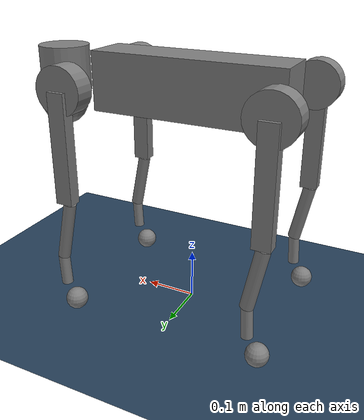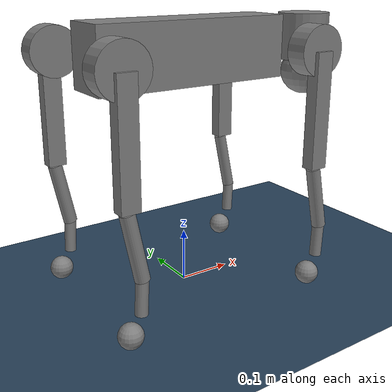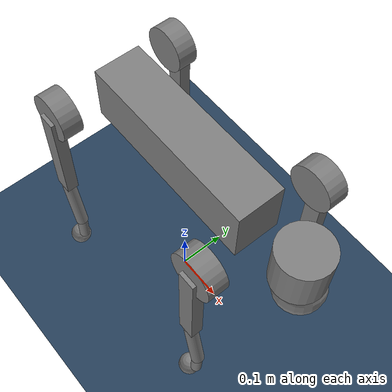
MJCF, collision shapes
<mujoco model="go2">
  <compiler angle="radian" meshdir="meshes" autolimits="true"/>

  <option cone="elliptic" impratio="100" integrator="implicitfast" timestep="0.0005"/>

<!-- All motor control limits are handeled in the joint actuatorfrcrange field. -->
  <default>
    <default class="go2">
      <geom friction="0.6" margin="0.001" condim="1"/>
      <joint axis="0 1 0" damping="2" armature="0.01" frictionloss="0.4"/>
      <motor ctrllimited="false"/>

      <!-- Hip joints -->
      <default class="hip">
        <joint axis="1 0 0" range="-1.0472 1.0472" actuatorfrcrange="-23.7 23.7"/>

        <!-- Position Control -->
        <default class="hip_pos">
          <position kp="60" ctrllimited="false"/>
        </default>

        <!-- Velocity Control -->
        <default class="hip_vel">
          <velocity kv="3" ctrllimited="false"/>
        </default>
      </default>

      <!-- Thigh joints -->
      <default class="thigh">
        <default class="front_thigh">
          <joint range="-1.5708 3.4907" actuatorfrcrange="-23.7 23.7"/>
        </default>
        <default class="back_thigh">
          <joint range="-0.5236 4.5379" actuatorfrcrange="-23.7 23.7"/>
        </default>

        <!-- Position Control -->
        <default class="thigh_pos">
          <position kp="60" ctrllimited="false"/>
        </default>

        <!-- Velocity Control -->
        <default class="thigh_vel">
          <velocity kv="3" ctrllimited="false"/>
        </default>
      </default>

      <!-- Calf joints -->
      <default class="calf">
        <joint range="-2.7227 -0.83776" actuatorfrcrange="-45.43 45.43"/>

        <!-- Position Control -->
        <default class="calf_pos">
         <position kp="60" ctrllimited="false"/>
        </default>

        <!-- Velocity Control -->
        <default class="calf_vel">
          <velocity kv="3" ctrllimited="false"/>
        </default>
      </default>

      <default class="visual">
        <geom type="mesh" contype="0" conaffinity="0" group="2"/>
      </default>

      <default class="collision">
        <geom group="3"/>
        <default class="foot">
          <geom size="0.022" pos="-0.002 0 -0.213" priority="1" solimp="0.015 1 0.022" condim="6"
            friction="0.8 0.02 0.01"/>
        </default>
      </default>
    </default>
  </default>

  <asset>
    <material name="metal" rgba=".9 .95 .95 1"/>
    <material name="black" rgba="0 0 0 1"/>
    <material name="white" rgba="1 1 1 1"/>
    <material name="gray" rgba="0.671705 0.692426 0.774270 1"/>

    <mesh name="trunk" file="trunk.stl"/>
    <mesh name="calf" file="calf.stl"/>
    <mesh name="foot" file="foot.stl"/>
    <mesh name="hip" file="hip.stl"/>
    <mesh name="thigh" file="thigh.stl"/>
    <mesh name="thigh_mirror" file="thigh_mirror.stl"/>
    <mesh name="calf_mirror" file="calf_mirror.stl"/>
  </asset>

  <worldbody>
    <body name="torso" pos="0 0 0.445" childclass="go2">
      <inertial pos="0.021112 0 -0.005366" quat="-0.000543471 0.713435 -0.00173769 0.700719" mass="6.921"
        diaginertia="0.02448 0.098077 0.107"/>
        <!-- diaginertia changed to match urdf throghout xml -->

      <geom mesh="trunk" class="visual"/>
      <geom size="0.1881 0.04675 0.057" type="box" class="collision"/>
      <geom size="0.05 0.045" pos="0.285 0 0.01" type="cylinder" class="collision"/>
      <geom size="0.047" pos="0.293 0 -0.06" class="collision"/>

      <site name="imu" pos="-0.02557 0 0.04232"/>
      <site name="torso_mocap_site" pos="0 0 0" euler="0 0 0" size="0.01"/>

      <body name="FL_hip" pos="0.1934 0.0465 0">
        <inertial pos="-0.0054 0.00194 -0.000105" quat="0.497014 0.499245 0.505462 0.498237" mass="0.678"
          diaginertia="0.00048 0.000884 0.000596"/>
        <joint name="FL_hip_joint" class="hip"/>
        <geom mesh="hip" class="visual"/>
        <geom size="0.046 0.02" pos="0 0.08 0" quat="1 1 0 0" type="cylinder" class="collision"/>

        <body name="FL_hip_rotor" pos="0.11215 0.04675 0">
          <inertial pos="0 0 0" euler="0 0 0" mass="0.089"
                diaginertia="0.000111842 0.000059647 0.000059647"/>
        </body>

        <body name="FL_thigh" pos="0 0.0955 0">
          <inertial pos="-0.00374 -0.0223 -0.0327" quat="0.829533 0.0847635 -0.0200632 0.551623" mass="1.152"
            diaginertia="0.00594973 0.00584149 0.000878787"/>
          <joint name="FL_thigh_joint" class="front_thigh"/>
          <geom mesh="thigh" class="visual"/>
          <geom size="0.1065 0.01225 0.017" pos="0 0 -0.1065" quat="0.707107 0 0.707107 0" type="box" class="collision"/>
          <body name="FL_calf" pos="0 0 -0.213">
            <inertial pos="0.00629595 -0.000622121 -0.141417" quat="0.710672 0.00154099 -0.00450087 0.703508"
              mass="0.241352" diaginertia="0.0014901 0.00146356 5.31397e-05"/>
            <joint name="FL_calf_joint" class="calf"/>
            <geom mesh="calf" class="visual"/>
            <geom size="0.012 0.06" pos="0.008 0 -0.06" quat="0.994493 0 -0.104807 0" type="cylinder" class="collision"/>
            <geom size="0.011 0.0325" pos="0.02 0 -0.148" quat="0.999688 0 0.0249974 0" type="cylinder" class="collision"/>
            <geom pos="0 0 -0.213" mesh="foot" class="visual" material="black"/>
            <geom name="FL" class="foot"/>
            <site name="FL_foot_site" pos="0 0 -0.213" size="0.01"/>
          </body>
        </body>
      </body>

      <body name="FR_hip" pos="0.1934 -0.0465 0">
        <inertial pos="-0.0054 -0.00194 -0.000105" quat="0.498237 0.505462 0.499245 0.497014" mass="0.678"
          diaginertia="0.00088403 0.000596003 0.000479967"/>
        <joint name="FR_hip_joint" class="hip"/>
        <geom mesh="hip" class="visual" quat="0 1 0 0"/>
        <geom size="0.046 0.02" pos="0 -0.08 0" quat="0.707107 0.707107 0 0" type="cylinder" class="collision"/>

        <body name="FR_hip_rotor" pos="0.11215 -0.04675 0">
          <inertial pos="0 0 0" euler="0 0 0" mass="0.089"
                diaginertia="0.000111842 0.000059647 0.000059647"/>
        </body>

        <body name="FR_thigh" pos="0 -0.0955 0">
          <inertial pos="-0.00374 0.0223 -0.0327" quat="0.551623 -0.0200632 0.0847635 0.829533" mass="1.152"
            diaginertia="0.00594973 0.00584149 0.000878787"/>
          <joint name="FR_thigh_joint" class="front_thigh"/>
          <geom mesh="thigh_mirror" class="visual"/>
          <geom size="0.1065 0.01225 0.017" pos="0 0 -0.1065" quat="0.707107 0 0.707107 0" type="box" class="collision"/>
          <body name="FR_calf" pos="0 0 -0.213">
            <inertial pos="0.00629595 0.000622121 -0.141417" quat="0.703508 -0.00450087 0.00154099 0.710672"
              mass="0.241352" diaginertia="0.0014901 0.00146356 5.31397e-05"/>
            <joint name="FR_calf_joint" class="calf"/>
            <geom mesh="calf_mirror" class="visual"/>
            <geom size="0.013 0.06" pos="0.01 0 -0.06" quat="0.995004 0 -0.0998334 0" type="cylinder" class="collision"/>
            <geom size="0.011 0.0325" pos="0.02 0 -0.148" quat="0.999688 0 0.0249974 0" type="cylinder" class="collision"/>
            <geom pos="0 0 -0.213" mesh="foot" class="visual" material="black"/>
            <geom name="FR" class="foot"/>
            <site name="FR_foot_site" pos="0 0 -0.213" size="0.01"/>
          </body>
        </body>
      </body>
      <body name="RL_hip" pos="-0.1934 0.0465 0">
        <inertial pos="0.0054 0.00194 -0.000105" quat="0.505462 0.498237 0.497014 0.499245" mass="0.678"
          diaginertia="0.00088403 0.000596003 0.000479967"/>
        <joint name="RL_hip_joint" class="hip"/>
        <geom mesh="hip" class="visual" quat="0 0 1 0"/>
        <geom size="0.046 0.02" pos="0 0.08 0" quat="0.707107 0.707107 0 0" type="cylinder" class="collision"/>

        <body name="RL_hip_rotor" pos="-0.11215 0.04675 0">
          <inertial pos="0 0 0" euler="0 0 0" mass="0.089"
                diaginertia="0.000111842 0.000059647 0.000059647"/>
        </body>

        <body name="RL_thigh" pos="0 0.0955 0">
          <inertial pos="-0.00374 -0.0223 -0.0327" quat="0.829533 0.0847635 -0.0200632 0.551623" mass="1.152"
            diaginertia="0.00594973 0.00584149 0.000878787"/>
          <joint name="RL_thigh_joint" class="back_thigh"/>
          <geom mesh="thigh" class="visual"/>
          <geom size="0.1065 0.01225 0.017" pos="0 0 -0.1065" quat="0.707107 0 0.707107 0" type="box" class="collision"/>
          <body name="RL_calf" pos="0 0 -0.213">
            <inertial pos="0.00629595 -0.000622121 -0.141417" quat="0.710672 0.00154099 -0.00450087 0.703508"
              mass="0.241352" diaginertia="0.0014901 0.00146356 5.31397e-05"/>
            <joint name="RL_calf_joint" class="calf"/>
            <geom mesh="calf" class="visual"/>
            <geom size="0.013 0.06" pos="0.01 0 -0.06" quat="0.995004 0 -0.0998334 0" type="cylinder" class="collision"/>
            <geom size="0.011 0.0325" pos="0.02 0 -0.148" quat="0.999688 0 0.0249974 0" type="cylinder" class="collision"/>
            <geom pos="0 0 -0.213" mesh="foot" class="visual" material="black"/>
            <geom name="RL" class="foot"/>
            <site name="RL_foot_site" pos="0 0 -0.213" size="0.01"/>
          </body>
        </body>
      </body>
      <body name="RR_hip" pos="-0.1934 -0.0465 0">
        <inertial pos="0.0054 -0.00194 -0.000105" quat="0.499245 0.497014 0.498237 0.505462" mass="0.678"
          diaginertia="0.00088403 0.000596003 0.000479967"/>
        <joint name="RR_hip_joint" class="hip"/>
        <geom mesh="hip" class="visual" quat="0 0 0 -1"/>
        <geom size="0.046 0.02" pos="0 -0.08 0" quat="0.707107 0.707107 0 0" type="cylinder" class="collision"/>

        <body name="RR_hip_rotor" pos="-0.11215 -0.04675 0">
          <inertial pos="0 0 0" euler="0 0 0" mass="0.089"
                diaginertia="0.000111842 0.000059647 0.000059647"/>
        </body>

        <body name="RR_thigh" pos="0 -0.0955 0">
          <inertial pos="-0.00374 0.0223 -0.0327" quat="0.551623 -0.0200632 0.0847635 0.829533" mass="1.152"
            diaginertia="0.00594973 0.00584149 0.000878787"/>
          <joint name="RR_thigh_joint" class="back_thigh"/>
          <geom mesh="thigh_mirror" class="visual"/>
          <geom size="0.1065 0.01225 0.017" pos="0 0 -0.1065" quat="0.707107 0 0.707107 0" type="box" class="collision"/>
          <body name="RR_calf" pos="0 0 -0.213">
            <inertial pos="0.00629595 0.000622121 -0.141417" quat="0.703508 -0.00450087 0.00154099 0.710672"
              mass="0.241352" diaginertia="0.0014901 0.00146356 5.31397e-05"/>
            <joint name="RR_calf_joint" class="calf"/>
            <geom mesh="calf_mirror" class="visual"/>
            <geom size="0.013 0.06" pos="0.01 0 -0.06" quat="0.995004 0 -0.0998334 0" type="cylinder" class="collision"/>
            <geom size="0.011 0.0325" pos="0.02 0 -0.148" quat="0.999688 0 0.0249974 0" type="cylinder" class="collision"/>
            <geom pos="0 0 -0.213" mesh="foot" class="visual" material="black"/>
            <geom name="RR" class="foot"/>
            <site name="RR_foot_site" pos="0 0 -0.213" size="0.01"/>
          </body>
        </body>
      </body>
    </body>
  </worldbody>

<!-- Sensors -->
<sensor>
    <!-- Joint position sensors -->
    <jointpos name="FL_hip_joint_pos_sensor" joint="FL_hip_joint" noise="0.001"/>
    <jointpos name="FR_hip_joint_pos_sensor" joint="FR_hip_joint" noise="0.001"/>
    <jointpos name="RL_hip_joint_pos_sensor" joint="RL_hip_joint" noise="0.001"/>
    <jointpos name="RR_hip_joint_pos_sensor" joint="RR_hip_joint" noise="0.001"/>

    <jointpos name="FL_thigh_joint_pos_sensor" joint="FL_thigh_joint" noise="0.001"/>
    <jointpos name="FR_thigh_joint_pos_sensor" joint="FR_thigh_joint" noise="0.001"/>
    <jointpos name="RL_thigh_joint_pos_sensor" joint="RL_thigh_joint" noise="0.001"/>
    <jointpos name="RR_thigh_joint_pos_sensor" joint="RR_thigh_joint" noise="0.001"/>

    <jointpos name="FL_calf_joint_pos_sensor" joint="FL_calf_joint" noise="0.001"/>
    <jointpos name="FR_calf_joint_pos_sensor" joint="FR_calf_joint" noise="0.001"/>
    <jointpos name="RL_calf_joint_pos_sensor" joint="RL_calf_joint" noise="0.001"/>
    <jointpos name="RR_calf_joint_pos_sensor" joint="RR_calf_joint" noise="0.001"/>

    <!-- Joint velocity sensors -->
    <jointvel name="FL_hip_joint_vel_sensor" joint="FL_hip_joint" noise="0.001"/>
    <jointvel name="FR_hip_joint_vel_sensor" joint="FR_hip_joint" noise="0.001"/>
    <jointvel name="RL_hip_joint_vel_sensor" joint="RL_hip_joint" noise="0.001"/>
    <jointvel name="RR_hip_joint_vel_sensor" joint="RR_hip_joint" noise="0.001"/>

    <jointvel name="FL_thigh_joint_vel_sensor" joint="FL_thigh_joint" noise="0.001"/>
    <jointvel name="FR_thigh_joint_vel_sensor" joint="FR_thigh_joint" noise="0.001"/>
    <jointvel name="RL_thigh_joint_vel_sensor" joint="RL_thigh_joint" noise="0.001"/>
    <jointvel name="RR_thigh_joint_vel_sensor" joint="RR_thigh_joint" noise="0.001"/>

    <jointvel name="FL_calf_joint_vel_sensor" joint="FL_calf_joint" noise="0.001"/>
    <jointvel name="FR_calf_joint_vel_sensor" joint="FR_calf_joint" noise="0.001"/>
    <jointvel name="RL_calf_joint_vel_sensor" joint="RL_calf_joint" noise="0.001"/>
    <jointvel name="RR_calf_joint_vel_sensor" joint="RR_calf_joint" noise="0.001"/>

    <!-- IMU sensors -->
    <accelerometer name="imu_acc_sensor" site="imu" noise="0.1"/>
    <gyro name="imu_gyro_sensor" site="imu" noise="0.01"/>
    <framequat name="imu_quat_sensor" objtype="site" objname="imu" noise="0.01"/>

    <!-- Mocap sensors -->
    <framepos name="base_mocap_pos_sensor" objtype="site" objname="torso_mocap_site" noise="0.01"/>
    <framequat name="base_mocap_quat_sensor" objtype="site" objname="torso_mocap_site" noise="0.01"/>

    <!--  Force sensors  -->
    <force name="FL_force_sensor" site="FL_foot_site"/>
    <force name="FR_force_sensor" site="FR_foot_site"/>
    <force name="RL_force_sensor" site="RL_foot_site"/>
    <force name="RR_force_sensor" site="RR_foot_site"/>
  </sensor>

<!-- Actuators -->
  <actuator>
    <!-- Position Control -->
    <position class="hip_pos" name="FR_hip_joint_pos" joint="FR_hip_joint"/>
    <position class="thigh_pos" name="FR_thigh_joint_pos" joint="FR_thigh_joint"/>
    <position class="calf_pos" name="FR_calf_joint_pos" joint="FR_calf_joint"/>
    <position class="hip_pos" name="FL_hip_joint_pos" joint="FL_hip_joint"/>
    <position class="thigh_pos" name="FL_thigh_joint_pos" joint="FL_thigh_joint"/>
    <position class="calf_pos" name="FL_calf_joint_pos" joint="FL_calf_joint"/>
    <position class="hip_pos" name="RR_hip_joint_pos" joint="RR_hip_joint"/>
    <position class="thigh_pos" name="RR_thigh_joint_pos" joint="RR_thigh_joint"/>
    <position class="calf_pos" name="RR_calf_joint_pos" joint="RR_calf_joint"/>
    <position class="hip_pos" name="RL_hip_joint_pos" joint="RL_hip_joint"/>
    <position class="thigh_pos" name="RL_thigh_joint_pos" joint="RL_thigh_joint"/>
    <position class="calf_pos" name="RL_calf_joint_pos" joint="RL_calf_joint"/>

    <!-- Velocity Control -->
    <velocity class="hip_vel" name="FR_hip_joint_vel" joint="FR_hip_joint"/>
    <velocity class="thigh_vel" name="FR_thigh_joint_vel" joint="FR_thigh_joint"/>
    <velocity class="calf_vel" name="FR_calf_joint_vel" joint="FR_calf_joint"/>
    <velocity class="hip_vel" name="FL_hip_joint_vel" joint="FL_hip_joint"/>
    <velocity class="thigh_vel" name="FL_thigh_joint_vel" joint="FL_thigh_joint"/>
    <velocity class="calf_vel" name="FL_calf_joint_vel" joint="FL_calf_joint"/>
    <velocity class="hip_vel" name="RR_hip_joint_vel" joint="RR_hip_joint"/>
    <velocity class="thigh_vel" name="RR_thigh_joint_vel" joint="RR_thigh_joint"/>
    <velocity class="calf_vel" name="RR_calf_joint_vel" joint="RR_calf_joint"/>
    <velocity class="hip_vel" name="RL_hip_joint_vel" joint="RL_hip_joint"/>
    <velocity class="thigh_vel" name="RL_thigh_joint_vel" joint="RL_thigh_joint"/>
    <velocity class="calf_vel" name="RL_calf_joint_vel" joint="RL_calf_joint"/>

    <!-- Torque Control -->
    <motor class="hip" name="FR_hip_joint" joint="FR_hip_joint"/>
    <motor class="thigh" name="FR_thigh_joint" joint="FR_thigh_joint"/>
    <motor class="calf" name="FR_calf_joint" joint="FR_calf_joint"/>
    <motor class="hip" name="FL_hip_joint" joint="FL_hip_joint"/>
    <motor class="thigh" name="FL_thigh_joint" joint="FL_thigh_joint"/>
    <motor class="calf" name="FL_calf_joint" joint="FL_calf_joint"/>
    <motor class="hip" name="RR_hip_joint" joint="RR_hip_joint"/>
    <motor class="thigh" name="RR_thigh_joint" joint="RR_thigh_joint"/>
    <motor class="calf" name="RR_calf_joint" joint="RR_calf_joint"/>
    <motor class="hip" name="RL_hip_joint" joint="RL_hip_joint"/>
    <motor class="thigh" name="RL_thigh_joint" joint="RL_thigh_joint"/>
    <motor class="calf" name="RL_calf_joint" joint="RL_calf_joint"/>
  </actuator>

  <keyframe>
    <key name="standing_isaac" qpos="-0.1 0.8 -1.5 0.1 0.8 -1.5 -0.1 1.0 -1.5 0.1 1.0 -1.5"
      ctrl="-0.1 0.8 -1.5 0.1 0.8 -1.5 -0.1 0.8 -1.5 0.1 0.8 -1.5
            0 0 0 0 0 0 0 0 0 0 0 0
            0 0 0 0 0 0 0 0 0 0 0 0"/>
  </keyframe>

  <statistic center="0 0 0.1" extent="0.8"/>
  <visual>
    <headlight diffuse="0.6 0.6 0.6" ambient="0.3 0.3 0.3" specular="0 0 0"/>
    <rgba haze="0.15 0.25 0.35 1"/>
    <global azimuth="-130" elevation="-20"/>
  </visual>
  <asset>
    <texture type="skybox" builtin="gradient" rgb1="0.3 0.5 0.7" rgb2="0 0 0" width="512" height="3072"/>
    <texture type="2d" name="groundplane" builtin="checker" mark="edge" rgb1="0.2 0.3 0.4" rgb2="0.1 0.2 0.3" markrgb="0.8 0.8 0.8" width="300" height="300"/>
    <material name="groundplane" texture="groundplane" texuniform="true" texrepeat="5 5" reflectance="0.2"/>
  </asset>
  <worldbody>
    <light pos="0 0 1.5" dir="0 0 -1" directional="true"/>
    <geom name="floor" size="0 0 0.05" type="plane" material="groundplane"/>
  </worldbody>
</mujoco>
